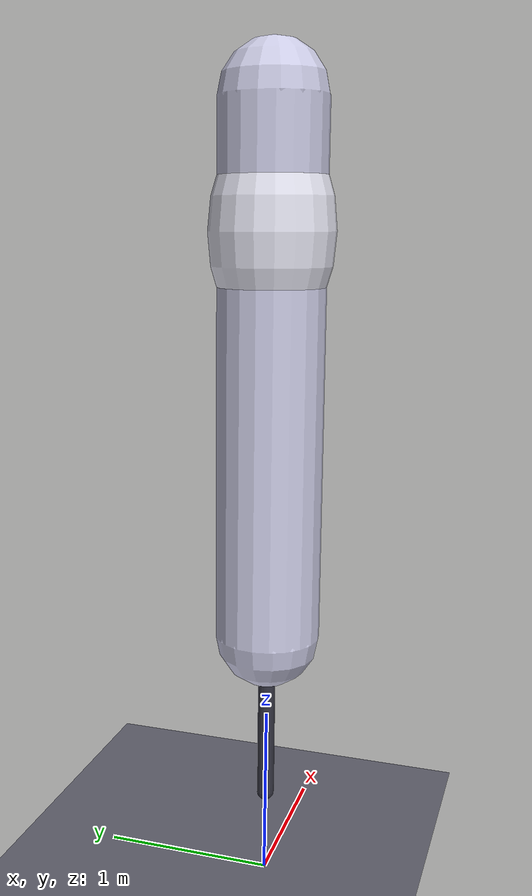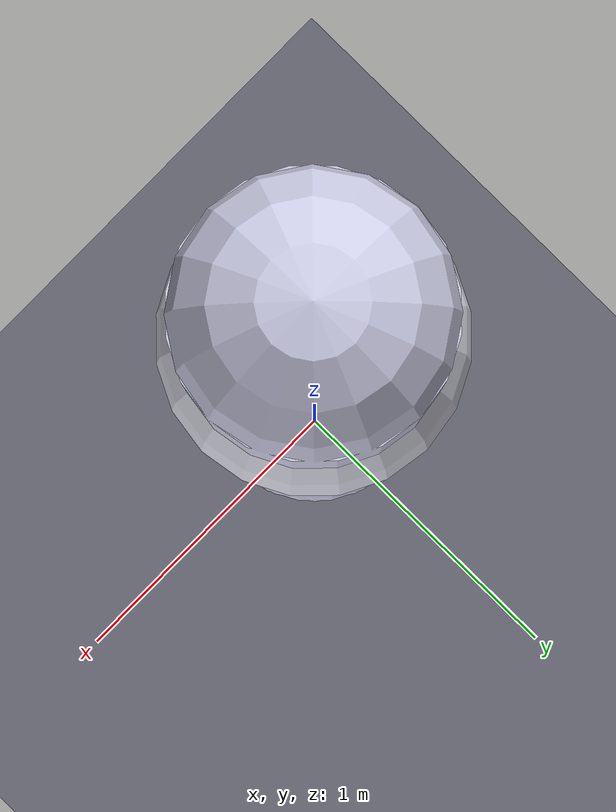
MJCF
<mujoco model="tvc_2d">
  <compiler angle="radian" inertiafromgeom="true"/>
  <option timestep="0.002" gravity="0 0 -9.81"/>

  <default>
    <joint armature="0.0" damping="0.2" limited="true"/>
    <geom density="1200" friction="0.6 0.1 0.1" rgba="0.8 0.8 0.9 1.0"/>
    <motor gear="1" ctrlrange="-1 1"/>
  </default>

  <asset>
    <texture name="sky" type="skybox" builtin="gradient" rgb1="0.05 0.1 0.2" rgb2="0.3 0.4 0.6" width="512" height="512"/>
    <material name="rocket" texture="sky" reflectance="0.2"/>
  </asset>

  <worldbody>
    <body name="ground" pos="0 0 0">
      <geom name="pad" type="plane" size="40 40 1" rgba="0.4 0.4 0.45 1" material="rocket"/>
    </body>

    <body name="vehicle" pos="0 0 3">
      <freejoint name="vehicle_free"/>
      <!-- Keep motion planar using soft stabilisation instead of invalid tendon attributes. -->
      <geom name="hull" type="capsule" fromto="0 0 -1.5 0 0 1.5" size="0.3" material="rocket" />
      <geom name="tank" type="ellipsoid" pos="0 0 0.8" size="0.35 0.35 0.6" rgba="0.9 0.9 0.95 1" />
      <site name="vehicle_cg" pos="0 0 0" size="0.05" rgba="0.9 0.4 0.4 1"/>

      <body name="tvc_mount" pos="0 0 -1.6">
        <joint name="tvc_x" type="slide" axis="1 0 0" range="-0.35 0.35" damping="15"/>
        <joint name="tvc_y" type="slide" axis="0 1 0" range="-0.35 0.35" damping="15"/>
        <geom name="mount" type="box" size="0.08 0.08 0.12" rgba="0.6 0.6 0.7 1"/>

        <body name="nozzle" pos="0 0 -0.1">
          <joint name="nozzle_pitch" type="hinge" axis="1 0 0" range="-0.2 0.2" damping="2" frictionloss="0.01"/>
          <geom name="nozzle_geom" type="capsule" fromto="0 0 0 0 0 -0.8" size="0.05" rgba="0.2 0.2 0.25 1"/>
          <site name="thrust_site" pos="0 0 -0.7" size="0.02" rgba="0.9 0.3 0.3 1"/>
        </body>
      </body>
    </body>
  </worldbody>

  <actuator>
    <motor name="thrust" joint="nozzle_pitch" gear="150" ctrlrange="-1 1"/>
    <motor name="cart_x" joint="tvc_x" gear="1" ctrlrange="-1 1"/>
    <motor name="cart_y" joint="tvc_y" gear="1" ctrlrange="-1 1"/>
  </actuator>

  <sensor>
    <accelerometer name="imu_acc" site="vehicle_cg"/>
    <gyro name="imu_gyro" site="vehicle_cg"/>
    <jointpos name="tvc_cart" joint="tvc_x"/>
    <jointpos name="tvc_cart_y" joint="tvc_y"/>
  </sensor>

</mujoco>
